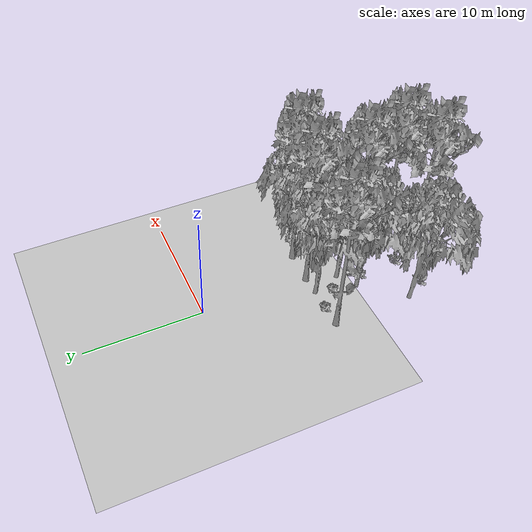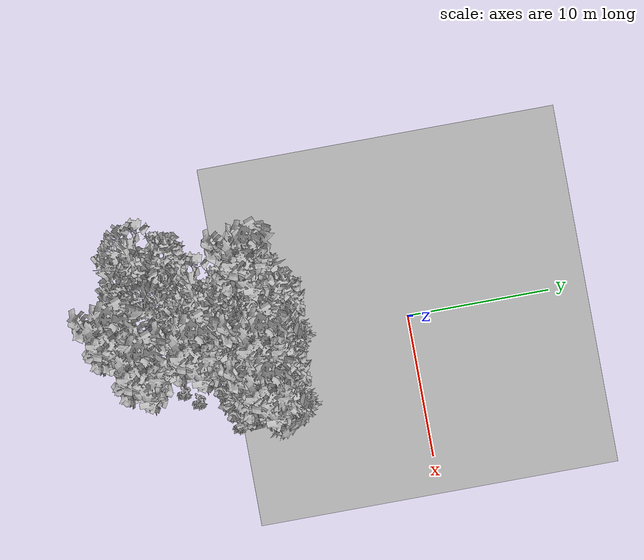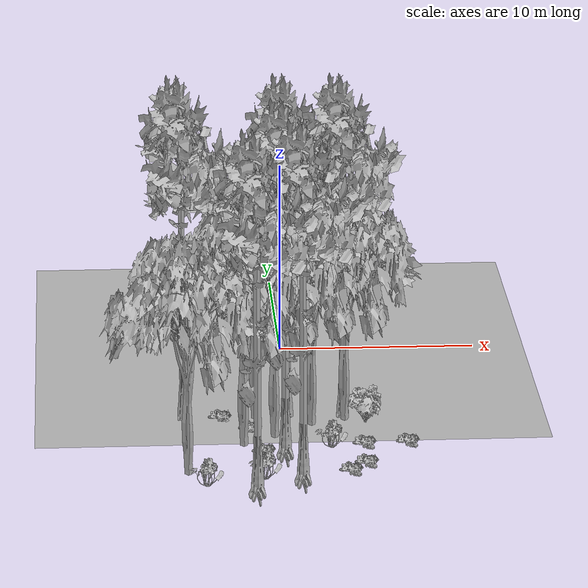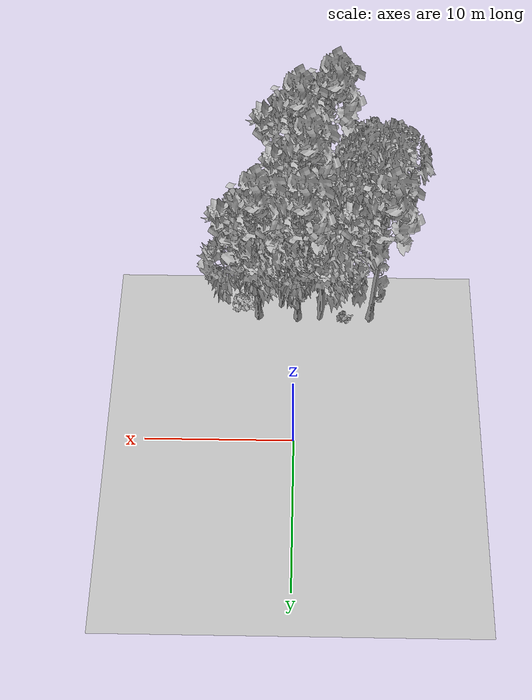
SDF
<sdf version="1.7">
 <world name="default">
  <model name="ground_plane">
   <static>1</static>
   <link name="link">
    <collision name="collision">
     <pose>-50 0 0 0 -0 0</pose>
     <geometry><plane><normal>0 0 1</normal><size>80 80</size></plane></geometry>
     <surface><contact><ode><min_depth>0.01</min_depth><max_vel>0</max_vel></ode></contact></surface>
    </collision>
    <visual name="grass">
     <cast_shadows>0</cast_shadows>
     <geometry>
      <mesh>
       <scale>0.46714285714285714 0.46714285714285714 0.1</scale>
       <uri>file://grass_plane/meshes/grass_plane.dae</uri>
      </mesh>
     </geometry>
    </visual>
   </link>
  </model>
  <model name="Tree 16">
   <static>1</static>
   <pose>0.8914246521429305 -10.282438653828034 0 1.57079 -0 0</pose>
   <link name="link">
    <collision name="collision">
     <geometry><mesh><scale>3.5 5 3.5</scale><uri>model://tree_2/meshes/tree_2.obj</uri></mesh></geometry>
    </collision>
    <visual name="visual">
     <geometry><mesh><scale>3.5 5 3.5</scale><uri>model://tree_2/meshes/tree_2.obj</uri></mesh></geometry>
    </visual>
   </link>
  </model>
  <model name="Tree 69">
   <static>1</static>
   <pose>-1.8460160270246888 -9.322222044493262 0 1.57079 -0 0</pose>
   <link name="link">
    <collision name="collision">
     <geometry><mesh><scale>3.5 5 3.5</scale><uri>model://tree_2/meshes/tree_2.obj</uri></mesh></geometry>
    </collision>
    <visual name="visual">
     <geometry><mesh><scale>3.5 5 3.5</scale><uri>model://tree_2/meshes/tree_2.obj</uri></mesh></geometry>
    </visual>
   </link>
  </model>
  <model name="Tree 86">
   <static>1</static>
   <pose>-2.5542932744407025 -12.772571305100698 0 1.57079 -0 0</pose>
   <link name="link">
    <collision name="collision">
     <geometry><mesh><scale>3.5 5 3.5</scale><uri>model://tree_2/meshes/tree_2.obj</uri></mesh></geometry>
    </collision>
    <visual name="visual">
     <geometry><mesh><scale>3.5 5 3.5</scale><uri>model://tree_2/meshes/tree_2.obj</uri></mesh></geometry>
    </visual>
   </link>
  </model>
  <model name="Tree 88">
   <static>1</static>
   <pose>2.5734462924223536 -9.33611392234102 0 1.57079 -0 0</pose>
   <link name="link">
    <collision name="collision">
     <geometry><mesh><scale>3.5 5 3.5</scale><uri>model://tree_9/meshes/tree_9.obj</uri></mesh></geometry>
    </collision>
    <visual name="visual">
     <geometry><mesh><scale>3.5 5 3.5</scale><uri>model://tree_9/meshes/tree_9.obj</uri></mesh></geometry>
    </visual>
   </link>
  </model>
  <model name="Tree 313">
   <static>1</static>
   <pose>-5.361610636842158 -16.17148151868185 0 1.57079 -0 0</pose>
   <link name="link">
    <collision name="collision">
     <geometry><mesh><scale>3.5 5 3.5</scale><uri>model://tree_2/meshes/tree_2.obj</uri></mesh></geometry>
    </collision>
    <visual name="visual">
     <geometry><mesh><scale>3.5 5 3.5</scale><uri>model://tree_2/meshes/tree_2.obj</uri></mesh></geometry>
    </visual>
   </link>
  </model>
  <model name="Tree 318">
   <static>1</static>
   <pose>-1.0039740348384 -11.765968531958197 0 1.57079 -0 0</pose>
   <link name="link">
    <collision name="collision">
     <geometry><mesh><scale>3.5 5 3.5</scale><uri>model://tree_2/meshes/tree_2.obj</uri></mesh></geometry>
    </collision>
    <visual name="visual">
     <geometry><mesh><scale>3.5 5 3.5</scale><uri>model://tree_2/meshes/tree_2.obj</uri></mesh></geometry>
    </visual>
   </link>
  </model>
  <model name="Tree 414">
   <static>1</static>
   <pose>-0.47855846418895 -13.221668604872143 0 1.57079 -0 0</pose>
   <link name="link">
    <collision name="collision">
     <geometry><mesh><scale>3.5 5 3.5</scale><uri>model://tree_9/meshes/tree_9.obj</uri></mesh></geometry>
    </collision>
    <visual name="visual">
     <geometry><mesh><scale>3.5 5 3.5</scale><uri>model://tree_9/meshes/tree_9.obj</uri></mesh></geometry>
    </visual>
   </link>
  </model>
  <model name="Tree 487">
   <static>1</static>
   <pose>-0.16967696322826953 -9.222060227740965 0 1.57079 -0 0</pose>
   <link name="link">
    <collision name="collision">
     <geometry><mesh><scale>3.5 5 3.5</scale><uri>model://tree_9/meshes/tree_9.obj</uri></mesh></geometry>
    </collision>
    <visual name="visual">
     <geometry><mesh><scale>3.5 5 3.5</scale><uri>model://tree_9/meshes/tree_9.obj</uri></mesh></geometry>
    </visual>
   </link>
  </model>
  <model name="Tree 561">
   <static>1</static>
   <pose>-5.282828473081246 -9.268517016148962 0 1.57079 -0 0</pose>
   <link name="link">
    <collision name="collision">
     <geometry><mesh><scale>3.5 5 3.5</scale><uri>model://tree_9/meshes/tree_9.obj</uri></mesh></geometry>
    </collision>
    <visual name="visual">
     <geometry><mesh><scale>3.5 5 3.5</scale><uri>model://tree_9/meshes/tree_9.obj</uri></mesh></geometry>
    </visual>
   </link>
  </model>
  <model name="Tree 577">
   <static>1</static>
   <pose>2.5536876729116784 -9.721206533084317 0 1.57079 -0 0</pose>
   <link name="link">
    <collision name="collision">
     <geometry><mesh><scale>3.5 5 3.5</scale><uri>model://tree_2/meshes/tree_2.obj</uri></mesh></geometry>
    </collision>
    <visual name="visual">
     <geometry><mesh><scale>3.5 5 3.5</scale><uri>model://tree_2/meshes/tree_2.obj</uri></mesh></geometry>
    </visual>
   </link>
  </model>
  <model name="Tree 579">
   <static>1</static>
   <pose>-2.061710980231666 -17.883998941245636 0 1.57079 -0 0</pose>
   <link name="link">
    <collision name="collision">
     <geometry><mesh><scale>3.5 5 3.5</scale><uri>model://tree_9/meshes/tree_9.obj</uri></mesh></geometry>
    </collision>
    <visual name="visual">
     <geometry><mesh><scale>3.5 5 3.5</scale><uri>model://tree_9/meshes/tree_9.obj</uri></mesh></geometry>
    </visual>
   </link>
  </model>
  <model name="Tree 622">
   <static>1</static>
   <pose>0.18449947229461117 -16.485802049720625 0 1.57079 -0 0</pose>
   <link name="link">
    <collision name="collision">
     <geometry><mesh><scale>3.5 5 3.5</scale><uri>model://tree_9/meshes/tree_9.obj</uri></mesh></geometry>
    </collision>
    <visual name="visual">
     <geometry><mesh><scale>3.5 5 3.5</scale><uri>model://tree_9/meshes/tree_9.obj</uri></mesh></geometry>
    </visual>
   </link>
  </model>
  <model name="Bush 85">
   <static>1</static>
   <pose>-1.636461094286517 -16.99598899098512 0 1.57079 -0 0</pose>
   <link name="link">
    <collision name="collision">
     <geometry><mesh><scale>2 2 2</scale><uri>model://bush_4/meshes/bush_4.obj</uri></mesh></geometry>
     <surface><contact><collide_without_contact>false</collide_without_contact></contact></surface>
    </collision>
    <visual name="visual">
     <geometry><mesh><scale>2 2 2</scale><uri>model://bush_4/meshes/bush_4.obj</uri></mesh></geometry>
    </visual>
   </link>
  </model>
  <model name="Bush 97">
   <static>1</static>
   <pose>-4.435779773302457 -17.71148880415779 0 1.57079 -0 0</pose>
   <link name="link">
    <collision name="collision">
     <geometry><mesh><scale>2 2 2</scale><uri>model://bush_4/meshes/bush_4.obj</uri></mesh></geometry>
     <surface><contact><collide_without_contact>false</collide_without_contact></contact></surface>
    </collision>
    <visual name="visual">
     <geometry><mesh><scale>2 2 2</scale><uri>model://bush_4/meshes/bush_4.obj</uri></mesh></geometry>
    </visual>
   </link>
  </model>
  <model name="Bush 115">
   <static>1</static>
   <pose>5.515934178667038 -12.866372822006447 0 1.57079 -0 0</pose>
   <link name="link">
    <collision name="collision">
     <geometry><mesh><scale>2 2 2</scale><uri>model://bush_2/meshes/bush_2.obj</uri></mesh></geometry>
     <surface><contact><collide_without_contact>false</collide_without_contact></contact></surface>
    </collision>
    <visual name="visual">
     <geometry><mesh><scale>2 2 2</scale><uri>model://bush_2/meshes/bush_2.obj</uri></mesh></geometry>
    </visual>
   </link>
  </model>
  <model name="Bush 158">
   <static>1</static>
   <pose>3.398494871604086 -12.983329327979778 0 1.57079 -0 0</pose>
   <link name="link">
    <collision name="collision">
     <geometry><mesh><scale>2 2 2</scale><uri>model://bush_2/meshes/bush_2.obj</uri></mesh></geometry>
     <surface><contact><collide_without_contact>false</collide_without_contact></contact></surface>
    </collision>
    <visual name="visual">
     <geometry><mesh><scale>2 2 2</scale><uri>model://bush_2/meshes/bush_2.obj</uri></mesh></geometry>
    </visual>
   </link>
  </model>
  <model name="Bush 202">
   <static>1</static>
   <pose>2.516466482451257 -16.27063087862398 0 1.57079 -0 0</pose>
   <link name="link">
    <collision name="collision">
     <geometry><mesh><scale>2 2 2</scale><uri>model://bush_2/meshes/bush_2.obj</uri></mesh></geometry>
     <surface><contact><collide_without_contact>false</collide_without_contact></contact></surface>
    </collision>
    <visual name="visual">
     <geometry><mesh><scale>2 2 2</scale><uri>model://bush_2/meshes/bush_2.obj</uri></mesh></geometry>
    </visual>
   </link>
  </model>
  <model name="Bush 256">
   <static>1</static>
   <pose>-3.4824483378979707 -9.311964776796835 0 1.57079 -0 0</pose>
   <link name="link">
    <collision name="collision">
     <geometry><mesh><scale>2 2 2</scale><uri>model://bush_2/meshes/bush_2.obj</uri></mesh></geometry>
     <surface><contact><collide_without_contact>false</collide_without_contact></contact></surface>
    </collision>
    <visual name="visual">
     <geometry><mesh><scale>2 2 2</scale><uri>model://bush_2/meshes/bush_2.obj</uri></mesh></geometry>
    </visual>
   </link>
  </model>
  <model name="Bush 257">
   <static>1</static>
   <pose>-1.533701182223652 -13.728826906703961 0 1.57079 -0 0</pose>
   <link name="link">
    <collision name="collision">
     <geometry><mesh><scale>2 2 2</scale><uri>model://bush_2/meshes/bush_2.obj</uri></mesh></geometry>
     <surface><contact><collide_without_contact>false</collide_without_contact></contact></surface>
    </collision>
    <visual name="visual">
     <geometry><mesh><scale>2 2 2</scale><uri>model://bush_2/meshes/bush_2.obj</uri></mesh></geometry>
    </visual>
   </link>
  </model>
  <model name="Bush 309">
   <static>1</static>
   <pose>3.635461773325382 -10.1797004127151 0 1.57079 -0 0</pose>
   <link name="link">
    <collision name="collision">
     <geometry><mesh><scale>2 2 2</scale><uri>model://bush_1/meshes/bush_1.obj</uri></mesh></geometry>
     <surface><contact><collide_without_contact>false</collide_without_contact></contact></surface>
    </collision>
    <visual name="visual">
     <geometry><mesh><scale>2 2 2</scale><uri>model://bush_1/meshes/bush_1.obj</uri></mesh></geometry>
    </visual>
   </link>
  </model>
  <model name="Bush 423">
   <static>1</static>
   <pose>3.327342932328172 -15.345568432783097 0 1.57079 -0 0</pose>
   <link name="link">
    <collision name="collision">
     <geometry><mesh><scale>2 2 2</scale><uri>model://bush_2/meshes/bush_2.obj</uri></mesh></geometry>
     <surface><contact><collide_without_contact>false</collide_without_contact></contact></surface>
    </collision>
    <visual name="visual">
     <geometry><mesh><scale>2 2 2</scale><uri>model://bush_2/meshes/bush_2.obj</uri></mesh></geometry>
    </visual>
   </link>
  </model>
  <model name="Bush 518">
   <static>1</static>
   <pose>-2.053179419355807 -10.801050503642251 0 1.57079 -0 0</pose>
   <link name="link">
    <collision name="collision">
     <geometry><mesh><scale>2 2 2</scale><uri>model://bush_2/meshes/bush_2.obj</uri></mesh></geometry>
     <surface><contact><collide_without_contact>false</collide_without_contact></contact></surface>
    </collision>
    <visual name="visual">
     <geometry><mesh><scale>2 2 2</scale><uri>model://bush_2/meshes/bush_2.obj</uri></mesh></geometry>
    </visual>
   </link>
  </model>
  <model name="Bush 526">
   <static>1</static>
   <pose>1.7678044509477076 -13.272942212906045 0 1.57079 -0 0</pose>
   <link name="link">
    <collision name="collision">
     <geometry><mesh><scale>2 2 2</scale><uri>model://bush_4/meshes/bush_4.obj</uri></mesh></geometry>
     <surface><contact><collide_without_contact>false</collide_without_contact></contact></surface>
    </collision>
    <visual name="visual">
     <geometry><mesh><scale>2 2 2</scale><uri>model://bush_4/meshes/bush_4.obj</uri></mesh></geometry>
    </visual>
   </link>
  </model>
 </world>
</sdf>
